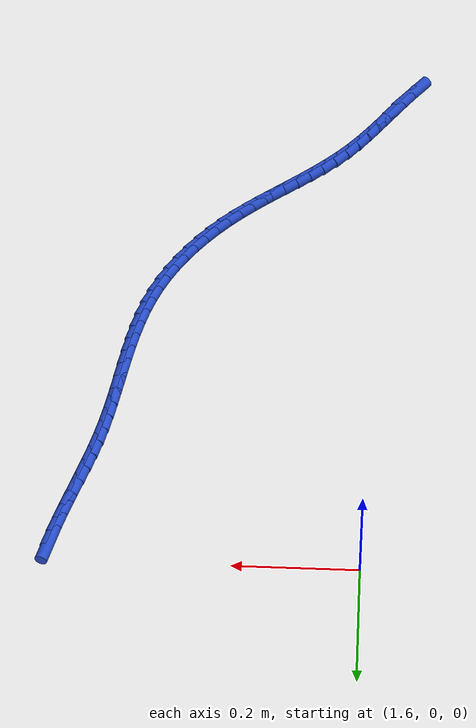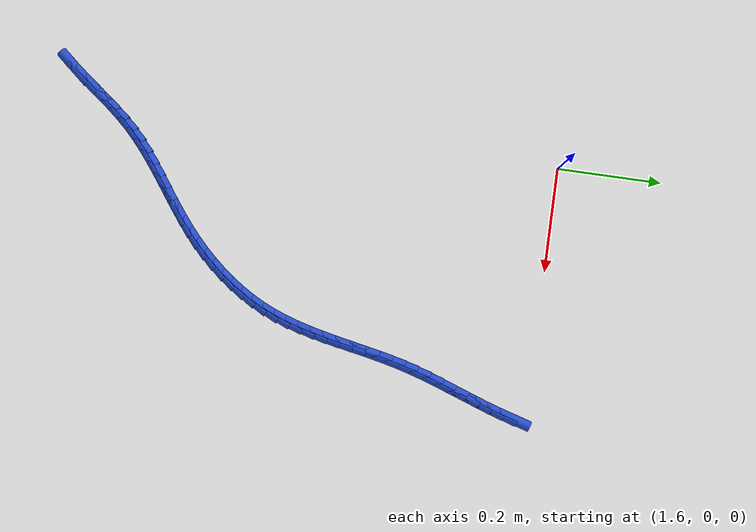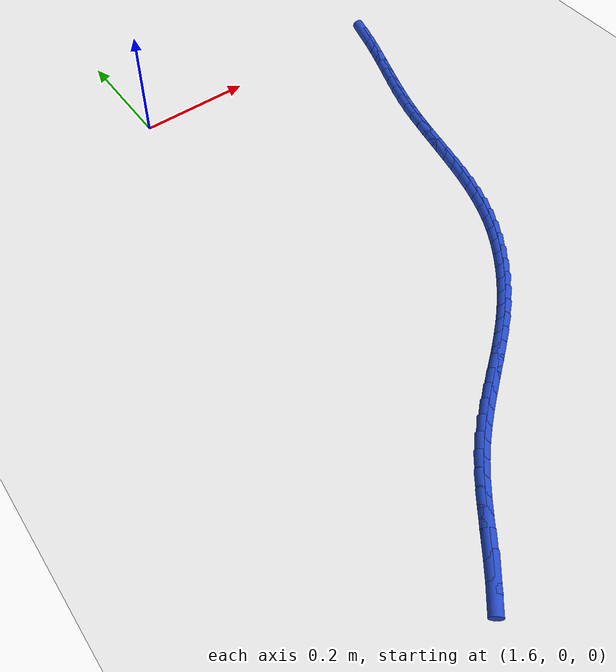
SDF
<sdf version="1.6">
 <world name="default">
  <model name="ground_plane">
   <static>1</static>
   <link name="link">
    <collision name="collision">
     <geometry><plane><normal>0 0 1</normal><size>100 100</size></plane></geometry>
     <surface><friction><ode><mu>100</mu><mu2>50</mu2></ode></friction></surface>
    </collision>
    <visual name="visual">
     <cast_shadows>0</cast_shadows>
     <geometry><plane><normal>0 0 1</normal><size>100 100</size></plane></geometry>
     <material>
      <script><uri>file://media/materials/scripts/gazebo.material</uri><name>Gazebo/WhiteGlow</name></script>
     </material>
    </visual>
   </link>
  </model>
  <model name="line">
   <link name="link_132">
    <pose>2.0823220044137867 -0.030817531587639817 0.01 0 1.57 1.290529096687458</pose>
    <collision name="collision">
     <geometry><cylinder><radius>0.01</radius><length>0.08</length></cylinder></geometry>
    </collision>
    <visual name="visual">
     <material>
      <script><name>Gazebo/Blue</name><uri>file://media/materials/scripts/gazebo.material</uri></script>
     </material>
     <geometry><cylinder><radius>0.01</radius><length>0.08</length></cylinder></geometry>
    </visual>
   </link>
   <link name="link_133">
    <pose>2.0752542812193795 -0.05537156496120971 0.01 0 1.57 1.26302134913782</pose>
    <collision name="collision">
     <geometry><cylinder><radius>0.01</radius><length>0.08</length></cylinder></geometry>
    </collision>
    <visual name="visual">
     <material>
      <script><name>Gazebo/Blue</name><uri>file://media/materials/scripts/gazebo.material</uri></script>
     </material>
     <geometry><cylinder><radius>0.01</radius><length>0.08</length></cylinder></geometry>
    </visual>
   </link>
   <link name="link_134">
    <pose>2.0674398682054687 -0.07995478310675769 0.01 0 1.57 1.2443838533007543</pose>
    <collision name="collision">
     <geometry><cylinder><radius>0.01</radius><length>0.08</length></cylinder></geometry>
    </collision>
    <visual name="visual">
     <material>
      <script><name>Gazebo/Blue</name><uri>file://media/materials/scripts/gazebo.material</uri></script>
     </material>
     <geometry><cylinder><radius>0.01</radius><length>0.08</length></cylinder></geometry>
    </visual>
   </link>
   <link name="link_135">
    <pose>2.0591034139303646 -0.10458086487728921 0.01 0 1.57 1.2343045648286366</pose>
    <collision name="collision">
     <geometry><cylinder><radius>0.01</radius><length>0.08</length></cylinder></geometry>
    </collision>
    <visual name="visual">
     <material>
      <script><name>Gazebo/Blue</name><uri>file://media/materials/scripts/gazebo.material</uri></script>
     </material>
     <geometry><cylinder><radius>0.01</radius><length>0.08</length></cylinder></geometry>
    </visual>
   </link>
   <link name="link_136">
    <pose>2.0504695669523794 -0.12926348912580896 0.01 0 1.57 1.2325713311905722</pose>
    <collision name="collision">
     <geometry><cylinder><radius>0.01</radius><length>0.08</length></cylinder></geometry>
    </collision>
    <visual name="visual">
     <material>
      <script><name>Gazebo/Blue</name><uri>file://media/materials/scripts/gazebo.material</uri></script>
     </material>
     <geometry><cylinder><radius>0.01</radius><length>0.08</length></cylinder></geometry>
    </visual>
   </link>
   <link name="link_137">
    <pose>2.0417629758298217 -0.15401633470532172 0.01 0 1.57 1.2390862495506012</pose>
    <collision name="collision">
     <geometry><cylinder><radius>0.01</radius><length>0.08</length></cylinder></geometry>
    </collision>
    <visual name="visual">
     <material>
      <script><name>Gazebo/Blue</name><uri>file://media/materials/scripts/gazebo.material</uri></script>
     </material>
     <geometry><cylinder><radius>0.01</radius><length>0.08</length></cylinder></geometry>
    </visual>
   </link>
   <link name="link_138">
    <pose>2.033208289121005 -0.1788530804688323 0.01 0 1.57 1.2538651885625687</pose>
    <collision name="collision">
     <geometry><cylinder><radius>0.01</radius><length>0.08</length></cylinder></geometry>
    </collision>
    <visual name="visual">
     <material>
      <script><name>Gazebo/Blue</name><uri>file://media/materials/scripts/gazebo.material</uri></script>
     </material>
     <geometry><cylinder><radius>0.01</radius><length>0.08</length></cylinder></geometry>
    </visual>
   </link>
   <link name="link_139">
    <pose>2.0250301553842376 -0.2037874052693453 0.01 0 1.57 1.2770239985116598</pose>
    <collision name="collision">
     <geometry><cylinder><radius>0.01</radius><length>0.08</length></cylinder></geometry>
    </collision>
    <visual name="visual">
     <material>
      <script><name>Gazebo/Blue</name><uri>file://media/materials/scripts/gazebo.material</uri></script>
     </material>
     <geometry><cylinder><radius>0.01</radius><length>0.08</length></cylinder></geometry>
    </visual>
   </link>
   <link name="link_140">
    <pose>2.017453223177831 -0.2288329879598662 0.01 0 1.57 1.308292526038975</pose>
    <collision name="collision">
     <geometry><cylinder><radius>0.01</radius><length>0.08</length></cylinder></geometry>
    </collision>
    <visual name="visual">
     <material>
      <script><name>Gazebo/Blue</name><uri>file://media/materials/scripts/gazebo.material</uri></script>
     </material>
     <geometry><cylinder><radius>0.01</radius><length>0.08</length></cylinder></geometry>
    </visual>
   </link>
   <link name="link_141">
    <pose>2.0106903160630423 -0.2540015712150405 0.01 0 1.57 1.339075110300928</pose>
    <collision name="collision">
     <geometry><cylinder><radius>0.01</radius><length>0.08</length></cylinder></geometry>
    </collision>
    <visual name="visual">
     <material>
      <script><name>Gazebo/Blue</name><uri>file://media/materials/scripts/gazebo.material</uri></script>
     </material>
     <geometry><cylinder><radius>0.01</radius><length>0.08</length></cylinder></geometry>
    </visual>
   </link>
   <link name="link_142">
    <pose>2.004728474518277 -0.27926792887843876 0.01 0 1.57 1.3614474699086914</pose>
    <collision name="collision">
     <geometry><cylinder><radius>0.01</radius><length>0.08</length></cylinder></geometry>
    </collision>
    <visual name="visual">
     <material>
      <script><name>Gazebo/Blue</name><uri>file://media/materials/scripts/gazebo.material</uri></script>
     </material>
     <geometry><cylinder><radius>0.01</radius><length>0.08</length></cylinder></geometry>
    </visual>
   </link>
   <link name="link_143">
    <pose>1.9993519781681603 -0.3045736355314988 0.01 0 1.57 1.3750370376752863</pose>
    <collision name="collision">
     <geometry><cylinder><radius>0.01</radius><length>0.08</length></cylinder></geometry>
    </collision>
    <visual name="visual">
     <material>
      <script><name>Gazebo/Blue</name><uri>file://media/materials/scripts/gazebo.material</uri></script>
     </material>
     <geometry><cylinder><radius>0.01</radius><length>0.08</length></cylinder></geometry>
    </visual>
   </link>
   <link name="link_144">
    <pose>1.9943379027875345 -0.32985908622572074 0.01 0 1.57 1.3797618769214417</pose>
    <collision name="collision">
     <geometry><cylinder><radius>0.01</radius><length>0.08</length></cylinder></geometry>
    </collision>
    <visual name="visual">
     <material>
      <script><name>Gazebo/Blue</name><uri>file://media/materials/scripts/gazebo.material</uri></script>
     </material>
     <geometry><cylinder><radius>0.01</radius><length>0.08</length></cylinder></geometry>
    </visual>
   </link>
   <link name="link_145">
    <pose>1.9894633241512445 -0.3550646760126048 0.01 0 1.57 1.375519853938157</pose>
    <collision name="collision">
     <geometry><cylinder><radius>0.01</radius><length>0.08</length></cylinder></geometry>
    </collision>
    <visual name="visual">
     <material>
      <script><name>Gazebo/Blue</name><uri>file://media/materials/scripts/gazebo.material</uri></script>
     </material>
     <geometry><cylinder><radius>0.01</radius><length>0.08</length></cylinder></geometry>
    </visual>
   </link>
   <link name="link_146">
    <pose>1.9845053180341345 -0.3801307999436515 0.01 0 1.57 1.362176391001688</pose>
    <collision name="collision">
     <geometry><cylinder><radius>0.01</radius><length>0.08</length></cylinder></geometry>
    </collision>
    <visual name="visual">
     <material>
      <script><name>Gazebo/Blue</name><uri>file://media/materials/scripts/gazebo.material</uri></script>
     </material>
     <geometry><cylinder><radius>0.01</radius><length>0.08</length></cylinder></geometry>
    </visual>
   </link>
   <link name="link_147">
    <pose>1.9792409602110477 -0.4049978530703606 0.01 0 1.57 1.3395736956373812</pose>
    <collision name="collision">
     <geometry><cylinder><radius>0.01</radius><length>0.08</length></cylinder></geometry>
    </collision>
    <visual name="visual">
     <material>
      <script><name>Gazebo/Blue</name><uri>file://media/materials/scripts/gazebo.material</uri></script>
     </material>
     <geometry><cylinder><radius>0.01</radius><length>0.08</length></cylinder></geometry>
    </visual>
   </link>
   <link name="link_148">
    <pose>1.9734473264568289 -0.42960623044423285 0.01 0 1.57 1.3075639014711165</pose>
    <collision name="collision">
     <geometry><cylinder><radius>0.01</radius><length>0.08</length></cylinder></geometry>
    </collision>
    <visual name="visual">
     <material>
      <script><name>Gazebo/Blue</name><uri>file://media/materials/scripts/gazebo.material</uri></script>
     </material>
     <geometry><cylinder><radius>0.01</radius><length>0.08</length></cylinder></geometry>
    </visual>
   </link>
   <link name="link_149">
    <pose>1.9669014925463215 -0.4538963271167689 0.01 0 1.57 1.2660688206945656</pose>
    <collision name="collision">
     <geometry><cylinder><radius>0.01</radius><length>0.08</length></cylinder></geometry>
    </collision>
    <visual name="visual">
     <material>
      <script><name>Gazebo/Blue</name><uri>file://media/materials/scripts/gazebo.material</uri></script>
     </material>
     <geometry><cylinder><radius>0.01</radius><length>0.08</length></cylinder></geometry>
    </visual>
   </link>
   <link name="link_150">
    <pose>1.9593805342543695 -0.4778085381394676 0.01 0 1.57 1.215166992562865</pose>
    <collision name="collision">
     <geometry><cylinder><radius>0.01</radius><length>0.08</length></cylinder></geometry>
    </collision>
    <visual name="visual">
     <material>
      <script><name>Gazebo/Blue</name><uri>file://media/materials/scripts/gazebo.material</uri></script>
     </material>
     <geometry><cylinder><radius>0.01</radius><length>0.08</length></cylinder></geometry>
    </visual>
   </link>
   <link name="link_151">
    <pose>1.9506615273558165 -0.5012832585638297 0.01 0 1.57 1.1552233864204087</pose>
    <collision name="collision">
     <geometry><cylinder><radius>0.01</radius><length>0.08</length></cylinder></geometry>
    </collision>
    <visual name="visual">
     <material>
      <script><name>Gazebo/Blue</name><uri>file://media/materials/scripts/gazebo.material</uri></script>
     </material>
     <geometry><cylinder><radius>0.01</radius><length>0.08</length></cylinder></geometry>
    </visual>
   </link>
   <link name="link_152">
    <pose>1.9405221197304672 -0.5242608855432701 0.01 0 1.57 1.0905127305292115</pose>
    <collision name="collision">
     <geometry><cylinder><radius>0.01</radius><length>0.08</length></cylinder></geometry>
    </collision>
    <visual name="visual">
     <material>
      <script><name>Gazebo/Blue</name><uri>file://media/materials/scripts/gazebo.material</uri></script>
     </material>
     <geometry><cylinder><radius>0.01</radius><length>0.08</length></cylinder></geometry>
    </visual>
   </link>
   <link name="link_153">
    <pose>1.9288412631129659 -0.5466821884216868 0.01 0 1.57 1.0289447178120337</pose>
    <collision name="collision">
     <geometry><cylinder><radius>0.01</radius><length>0.08</length></cylinder></geometry>
    </collision>
    <visual name="visual">
     <material>
      <script><name>Gazebo/Blue</name><uri>file://media/materials/scripts/gazebo.material</uri></script>
     </material>
     <geometry><cylinder><radius>0.01</radius><length>0.08</length></cylinder></geometry>
    </visual>
   </link>
   <link name="link_154">
    <pose>1.9157148276033447 -0.5684887335013111 0.01 0 1.57 0.9711193842752844</pose>
    <collision name="collision">
     <geometry><cylinder><radius>0.01</radius><length>0.08</length></cylinder></geometry>
    </collision>
    <visual name="visual">
     <material>
      <script><name>Gazebo/Blue</name><uri>file://media/materials/scripts/gazebo.material</uri></script>
     </material>
     <geometry><cylinder><radius>0.01</radius><length>0.08</length></cylinder></geometry>
    </visual>
   </link>
   <link name="link_155">
    <pose>1.9012666727692906 -0.5896221899177121 0.01 0 1.57 0.9165761534560988</pose>
    <collision name="collision">
     <geometry><cylinder><radius>0.01</radius><length>0.08</length></cylinder></geometry>
    </collision>
    <visual name="visual">
     <material>
      <script><name>Gazebo/Blue</name><uri>file://media/materials/scripts/gazebo.material</uri></script>
     </material>
     <geometry><cylinder><radius>0.01</radius><length>0.08</length></cylinder></geometry>
    </visual>
   </link>
   <link name="link_156">
    <pose>1.8856206581784902 -0.6100242268064596 0.01 0 1.57 0.864836711940128</pose>
    <collision name="collision">
     <geometry><cylinder><radius>0.01</radius><length>0.08</length></cylinder></geometry>
    </collision>
    <visual name="visual">
     <material>
      <script><name>Gazebo/Blue</name><uri>file://media/materials/scripts/gazebo.material</uri></script>
     </material>
     <geometry><cylinder><radius>0.01</radius><length>0.08</length></cylinder></geometry>
    </visual>
   </link>
   <link name="link_157">
    <pose>1.8689006433986317 -0.6296365133031212 0.01 0 1.57 0.8154171117260791</pose>
    <collision name="collision">
     <geometry><cylinder><radius>0.01</radius><length>0.08</length></cylinder></geometry>
    </collision>
    <visual name="visual">
     <material>
      <script><name>Gazebo/Blue</name><uri>file://media/materials/scripts/gazebo.material</uri></script>
     </material>
     <geometry><cylinder><radius>0.01</radius><length>0.08</length></cylinder></geometry>
    </visual>
   </link>
   <link name="link_158">
    <pose>1.8512304879974015 -0.6484007185432669 0.01 0 1.57 0.767832734048772</pose>
    <collision name="collision">
     <geometry><cylinder><radius>0.01</radius><length>0.08</length></cylinder></geometry>
    </collision>
    <visual name="visual">
     <material>
      <script><name>Gazebo/Blue</name><uri>file://media/materials/scripts/gazebo.material</uri></script>
     </material>
     <geometry><cylinder><radius>0.01</radius><length>0.08</length></cylinder></geometry>
    </visual>
   </link>
   <link name="link_159">
    <pose>1.8327340515424868 -0.6662585116624654 0.01 0 1.57 0.7218563107997563</pose>
    <collision name="collision">
     <geometry><cylinder><radius>0.01</radius><length>0.08</length></cylinder></geometry>
    </collision>
    <visual name="visual">
     <material>
      <script><name>Gazebo/Blue</name><uri>file://media/materials/scripts/gazebo.material</uri></script>
     </material>
     <geometry><cylinder><radius>0.01</radius><length>0.08</length></cylinder></geometry>
    </visual>
   </link>
   <link name="link_160">
    <pose>1.8135361017828513 -0.6831595713687711 0.01 0 1.57 0.6820847260701043</pose>
    <collision name="collision">
     <geometry><cylinder><radius>0.01</radius><length>0.08</length></cylinder></geometry>
    </collision>
    <visual name="visual">
     <material>
      <script><name>Gazebo/Blue</name><uri>file://media/materials/scripts/gazebo.material</uri></script>
     </material>
     <geometry><cylinder><radius>0.01</radius><length>0.08</length></cylinder></geometry>
    </visual>
   </link>
   <link name="link_161">
    <pose>1.7937785716204429 -0.6992049619367228 0.01 0 1.57 0.6531453126039585</pose>
    <collision name="collision">
     <geometry><cylinder><radius>0.01</radius><length>0.08</length></cylinder></geometry>
    </collision>
    <visual name="visual">
     <material>
      <script><name>Gazebo/Blue</name><uri>file://media/materials/scripts/gazebo.material</uri></script>
     </material>
     <geometry><cylinder><radius>0.01</radius><length>0.08</length></cylinder></geometry>
    </visual>
   </link>
   <link name="link_162">
    <pose>1.7736187148166929 -0.7146308677294726 0.01 0 1.57 0.6354247304139969</pose>
    <collision name="collision">
     <geometry><cylinder><radius>0.01</radius><length>0.08</length></cylinder></geometry>
    </collision>
    <visual name="visual">
     <material>
      <script><name>Gazebo/Blue</name><uri>file://media/materials/scripts/gazebo.material</uri></script>
     </material>
     <geometry><cylinder><radius>0.01</radius><length>0.08</length></cylinder></geometry>
    </visual>
   </link>
   <link name="link_163">
    <pose>1.753214322961039 -0.7296782164059044 0.01 0 1.57 0.6290220866010328</pose>
    <collision name="collision">
     <geometry><cylinder><radius>0.01</radius><length>0.08</length></cylinder></geometry>
    </collision>
    <visual name="visual">
     <material>
      <script><name>Gazebo/Blue</name><uri>file://media/materials/scripts/gazebo.material</uri></script>
     </material>
     <geometry><cylinder><radius>0.01</radius><length>0.08</length></cylinder></geometry>
    </visual>
   </link>
   <link name="link_164">
    <pose>1.7327231876429168 -0.744587935624902 0.01 0 1.57 0.6339670100376923</pose>
    <collision name="collision">
     <geometry><cylinder><radius>0.01</radius><length>0.08</length></cylinder></geometry>
    </collision>
    <visual name="visual">
     <material>
      <script><name>Gazebo/Blue</name><uri>file://media/materials/scripts/gazebo.material</uri></script>
     </material>
     <geometry><cylinder><radius>0.01</radius><length>0.08</length></cylinder></geometry>
    </visual>
   </link>
   <link name="link_165">
    <pose>1.7123031004517608 -0.7596009530453489 0.01 0 1.57 0.6502437755853303</pose>
    <collision name="collision">
     <geometry><cylinder><radius>0.01</radius><length>0.08</length></cylinder></geometry>
    </collision>
    <visual name="visual">
     <material>
      <script><name>Gazebo/Blue</name><uri>file://media/materials/scripts/gazebo.material</uri></script>
     </material>
     <geometry><cylinder><radius>0.01</radius><length>0.08</length></cylinder></geometry>
    </visual>
   </link>
   <link name="link_166">
    <pose>1.6921118529770087 -0.7749581963261282 0.01 0 1.57 0.6777725149495509</pose>
    <collision name="collision">
     <geometry><cylinder><radius>0.01</radius><length>0.08</length></cylinder></geometry>
    </collision>
    <visual name="visual">
     <material>
      <script><name>Gazebo/Blue</name><uri>file://media/materials/scripts/gazebo.material</uri></script>
     </material>
     <geometry><cylinder><radius>0.01</radius><length>0.08</length></cylinder></geometry>
    </visual>
   </link>
   <link name="link_167">
    <pose>1.6723072368080951 -0.7909005931261236 0.01 0 1.57 0.7163488771896526</pose>
    <collision name="collision">
     <geometry><cylinder><radius>0.01</radius><length>0.08</length></cylinder></geometry>
    </collision>
    <visual name="visual">
     <material>
      <script><name>Gazebo/Blue</name><uri>file://media/materials/scripts/gazebo.material</uri></script>
     </material>
     <geometry><cylinder><radius>0.01</radius><length>0.08</length></cylinder></geometry>
    </visual>
   </link>
   <link name="link_168">
    <pose>1.6530470435344564 -0.8076690711042189 0.01 0 1.57 0.7655485263776908</pose>
    <collision name="collision">
     <geometry><cylinder><radius>0.01</radius><length>0.08</length></cylinder></geometry>
    </collision>
    <visual name="visual">
     <material>
      <script><name>Gazebo/Blue</name><uri>file://media/materials/scripts/gazebo.material</uri></script>
     </material>
     <geometry><cylinder><radius>0.01</radius><length>0.08</length></cylinder></geometry>
    </visual>
   </link>
   <link name="link_169">
    <pose>1.6344890647455272 -0.8255045579192974 0.01 0 1.57 0.8222726222028793</pose>
    <collision name="collision">
     <geometry><cylinder><radius>0.01</radius><length>0.08</length></cylinder></geometry>
    </collision>
    <visual name="visual">
     <material>
      <script><name>Gazebo/Blue</name><uri>file://media/materials/scripts/gazebo.material</uri></script>
     </material>
     <geometry><cylinder><radius>0.01</radius><length>0.08</length></cylinder></geometry>
    </visual>
   </link>
   <link name="link_170">
    <pose>1.6167583117787776 -0.8445936380099314 0.01 0 1.57 0.8690718277659105</pose>
    <collision name="collision">
     <geometry><cylinder><radius>0.01</radius><length>0.08</length></cylinder></geometry>
    </collision>
    <visual name="visual">
     <material>
      <script><name>Gazebo/Blue</name><uri>file://media/materials/scripts/gazebo.material</uri></script>
     </material>
     <geometry><cylinder><radius>0.01</radius><length>0.08</length></cylinder></geometry>
    </visual>
   </link>
   <link name="link_171">
    <pose>1.5997409002344734 -0.8647268535972288 0.01 0 1.57 0.8992988645983864</pose>
    <collision name="collision">
     <geometry><cylinder><radius>0.01</radius><length>0.08</length></cylinder></geometry>
    </collision>
    <visual name="visual">
     <material>
      <script><name>Gazebo/Blue</name><uri>file://media/materials/scripts/gazebo.material</uri></script>
     </material>
     <geometry><cylinder><radius>0.01</radius><length>0.08</length></cylinder></geometry>
    </visual>
   </link>
   <link name="link_172">
    <pose>1.583217176868034 -0.885519402928634 0.01 0 1.57 0.9137507152981086</pose>
    <collision name="collision">
     <geometry><cylinder><radius>0.01</radius><length>0.08</length></cylinder></geometry>
    </collision>
    <visual name="visual">
     <material>
      <script><name>Gazebo/Blue</name><uri>file://media/materials/scripts/gazebo.material</uri></script>
     </material>
     <geometry><cylinder><radius>0.01</radius><length>0.08</length></cylinder></geometry>
    </visual>
   </link>
   <link name="link_173">
    <pose>1.566967016860656 -0.9065857024741341 0.01 0 1.57 0.9127692719508304</pose>
    <collision name="collision">
     <geometry><cylinder><radius>0.01</radius><length>0.08</length></cylinder></geometry>
    </collision>
    <visual name="visual">
     <material>
      <script><name>Gazebo/Blue</name><uri>file://media/materials/scripts/gazebo.material</uri></script>
     </material>
     <geometry><cylinder><radius>0.01</radius><length>0.08</length></cylinder></geometry>
    </visual>
   </link>
   <link name="link_174">
    <pose>1.5507702953935312 -0.9275401687037172 0.01 0 1.57 0.8961219094364768</pose>
    <collision name="collision">
     <geometry><cylinder><radius>0.01</radius><length>0.08</length></cylinder></geometry>
    </collision>
    <visual name="visual">
     <material>
      <script><name>Gazebo/Blue</name><uri>file://media/materials/scripts/gazebo.material</uri></script>
     </material>
     <geometry><cylinder><radius>0.01</radius><length>0.08</length></cylinder></geometry>
    </visual>
   </link>
   <link name="link_175">
    <pose>1.5344068876478563 -0.9479972180873725 0.01 0 1.57 0.8629816174065245</pose>
    <collision name="collision">
     <geometry><cylinder><radius>0.01</radius><length>0.08</length></cylinder></geometry>
    </collision>
    <visual name="visual">
     <material>
      <script><name>Gazebo/Blue</name><uri>file://media/materials/scripts/gazebo.material</uri></script>
     </material>
     <geometry><cylinder><radius>0.01</radius><length>0.08</length></cylinder></geometry>
    </visual>
   </link>
  </model>
 </world>
</sdf>
